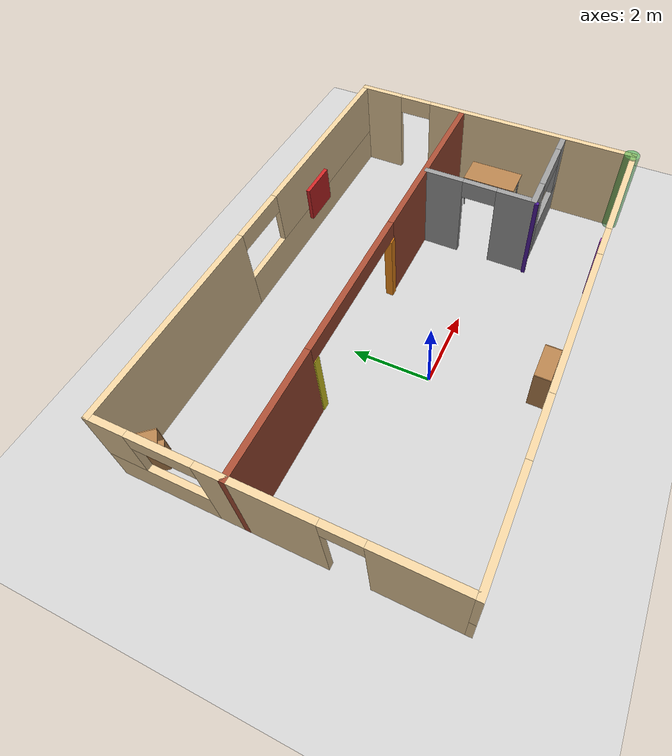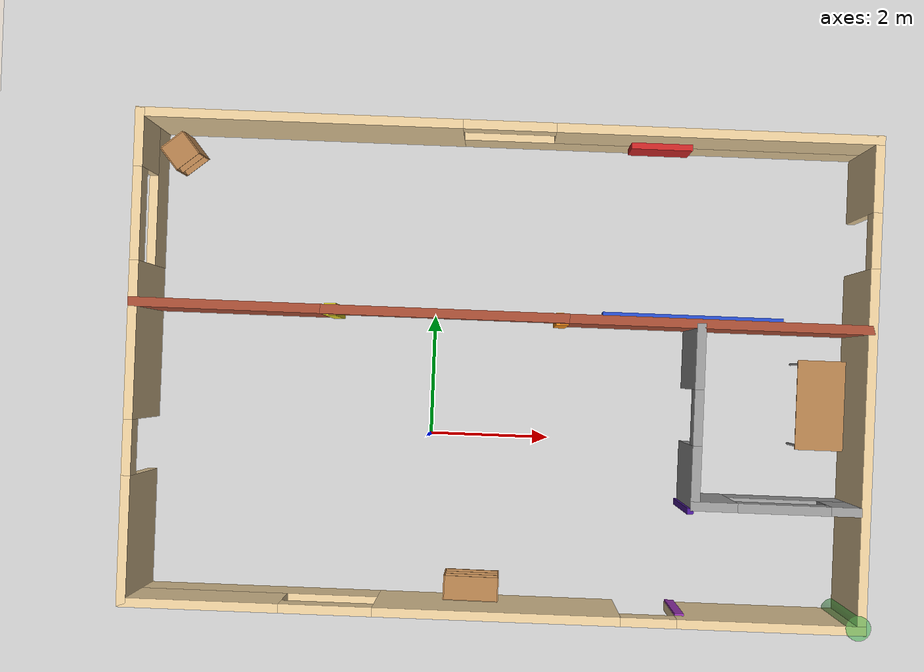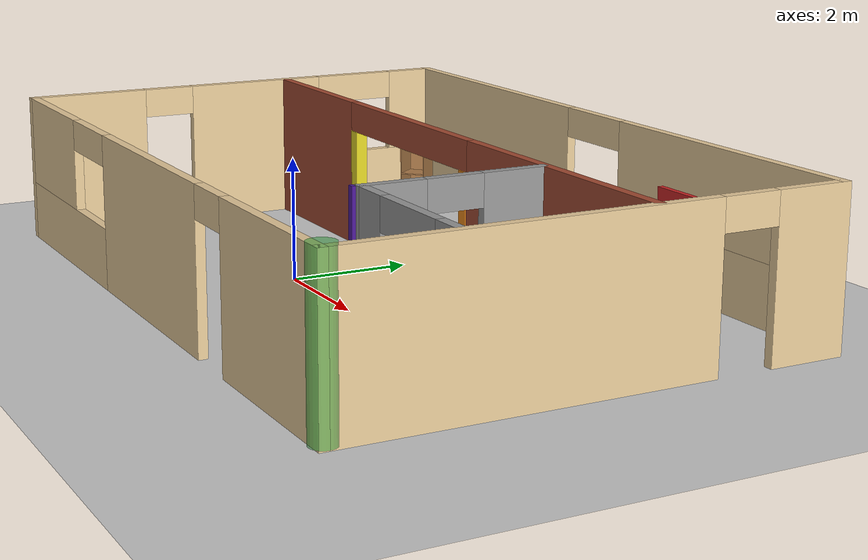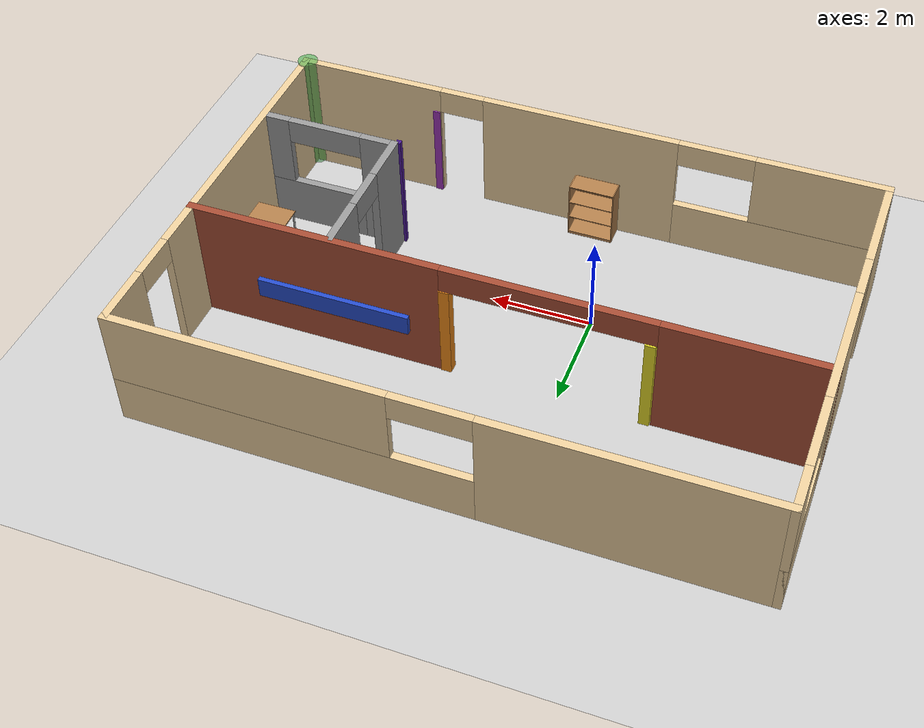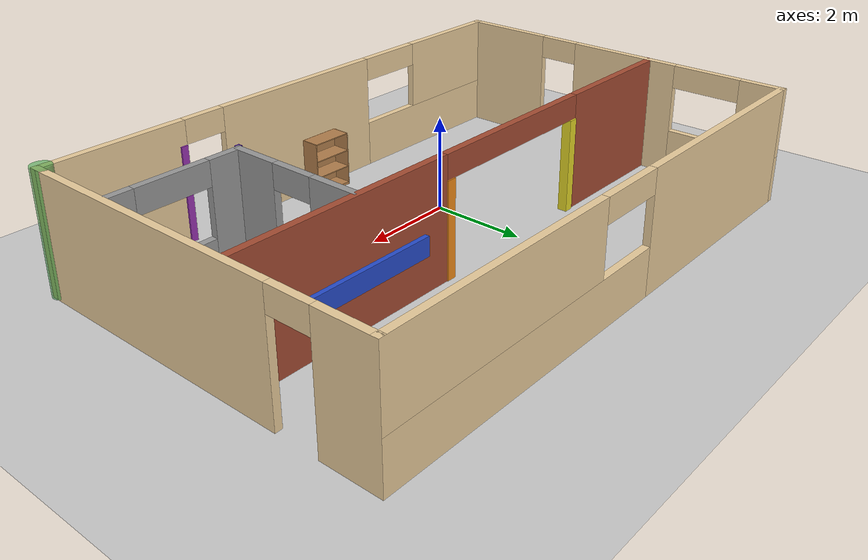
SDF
<sdf version="1.6">
 <world name="default">
  <plugin name="welcome" filename="libmy_script.so"/>
  <light name="sun" type="directional">
   <pose>0 0 10 0 -0 0</pose>
   <diffuse>0.8 0.8 0.8 1</diffuse>
   <specular>0.2 0.2 0.2 1</specular>
   <attenuation>
    <range>1000</range>
    <constant>0.9</constant>
    <linear>0.01</linear>
    <quadratic>0.001</quadratic>
   </attenuation>
   <direction>-0.5 0.1 -0.9</direction>
   <spot><inner_angle>0</inner_angle><outer_angle>0</outer_angle><falloff>0</falloff></spot>
  </light>
  <model name="ground_plane">
   <static>1</static>
   <link name="link">
    <collision name="collision">
     <geometry><plane><normal>0 0 1</normal><size>100 100</size></plane></geometry>
     <surface>
      <contact><collide_bitmask>65535</collide_bitmask></contact>
      <friction><ode><mu>100</mu><mu2>50</mu2></ode></friction>
     </surface>
    </collision>
    <visual name="visual">
     <cast_shadows>0</cast_shadows>
     <geometry><plane><normal>0 0 1</normal><size>100 100</size></plane></geometry>
     <material>
      <script><uri>file://media/materials/scripts/gazebo.material</uri><name>Gazebo/Grey</name></script>
     </material>
    </visual>
   </link>
  </model>
  <gravity>0 0 -9.8</gravity>
  <magnetic_field>6e-06 2.3e-05 -4.2e-05</magnetic_field>
  <atmosphere type="adiabatic"/>
  <physics name="default_physics" default="0" type="ode">
   <max_step_size>0.001</max_step_size>
   <real_time_factor>1</real_time_factor>
   <real_time_update_rate>1000</real_time_update_rate>
  </physics>
  <scene><ambient>0.4 0.4 0.4 1</ambient><background>0.7 0.7 0.7 1</background><shadows>1</shadows></scene>
  <spherical_coordinates>
   <surface_model>EARTH_WGS84</surface_model>
   <latitude_deg>0</latitude_deg>
   <longitude_deg>0</longitude_deg>
   <elevation>0</elevation>
   <heading_deg>0</heading_deg>
  </spherical_coordinates>
  <model name="myBuilding">
   <pose>1.15408 1.10009 0 0 -0 0</pose>
   <link name="Wall_10">
    <pose>4.4883 -2.03352 0 0 -0 0</pose>
    <visual name="Wall_10_Visual_0">
     <pose>-0.995451 0 1.25 0 -0 0</pose>
     <geometry><box><size>0.759098 0.15 2.5</size></box></geometry>
     <material>
      <script><uri>file://media/materials/scripts/gazebo.material</uri><name>Gazebo/Grey</name></script>
      <ambient>1 1 1 1</ambient>
     </material>
     <meta><layer>0</layer></meta>
    </visual>
    <collision name="Wall_10_Collision_0">
     <geometry><box><size>0.759098 0.15 2.5</size></box></geometry>
     <pose>-0.995451 0 1.25 0 -0 0</pose>
    </collision>
    <visual name="Wall_10_Visual_1">
     <pose>0.379549 0 0.5 0 -0 0</pose>
     <geometry><box><size>1.9909 0.15 1</size></box></geometry>
     <material>
      <script><uri>file://media/materials/scripts/gazebo.material</uri><name>Gazebo/Grey</name></script>
      <ambient>1 1 1 1</ambient>
     </material>
     <meta><layer>0</layer></meta>
    </visual>
    <collision name="Wall_10_Collision_1">
     <geometry><box><size>1.9909 0.15 1</size></box></geometry>
     <pose>0.379549 0 0.5 0 -0 0</pose>
    </collision>
    <visual name="Wall_10_Visual_2">
     <pose>1.12955 0 1.75 0 -0 0</pose>
     <geometry><box><size>0.490902 0.15 1.5</size></box></geometry>
     <material>
      <script><uri>file://media/materials/scripts/gazebo.material</uri><name>Gazebo/Grey</name></script>
      <ambient>1 1 1 1</ambient>
     </material>
     <meta><layer>0</layer></meta>
    </visual>
    <collision name="Wall_10_Collision_2">
     <geometry><box><size>0.490902 0.15 1.5</size></box></geometry>
     <pose>1.12955 0 1.75 0 -0 0</pose>
    </collision>
    <visual name="Wall_10_Visual_3">
     <pose>0.134098 0 2.25 0 -0 0</pose>
     <geometry><box><size>1.5 0.15 0.5</size></box></geometry>
     <material>
      <script><uri>file://media/materials/scripts/gazebo.material</uri><name>Gazebo/Grey</name></script>
      <ambient>1 1 1 1</ambient>
     </material>
     <meta><layer>0</layer></meta>
    </visual>
    <collision name="Wall_10_Collision_3">
     <geometry><box><size>1.5 0.15 0.5</size></box></geometry>
     <pose>0.134098 0 2.25 0 -0 0</pose>
    </collision>
   </link>
   <link name="Wall_2">
    <pose>0.000155 3.925 0 0 -0 0</pose>
    <visual name="Wall_2_Visual_0">
     <pose>-3.37694 0 1.25 0 -0 0</pose>
     <geometry><box><size>5.24613 0.15 2.5</size></box></geometry>
     <material>
      <script><uri>file://media/materials/scripts/gazebo.material</uri><name>Gazebo/Grey</name></script>
      <ambient>0.921569 0.807843 0.615686 1</ambient>
     </material>
     <meta><layer>0</layer></meta>
    </visual>
    <collision name="Wall_2_Collision_0">
     <geometry><box><size>5.24613 0.15 2.5</size></box></geometry>
     <pose>-3.37694 0 1.25 0 -0 0</pose>
    </collision>
    <visual name="Wall_2_Visual_1">
     <pose>2.62306 0 0.5 0 -0 0</pose>
     <geometry><box><size>6.75387 0.15 1</size></box></geometry>
     <material>
      <script><uri>file://media/materials/scripts/gazebo.material</uri><name>Gazebo/Grey</name></script>
      <ambient>0.921569 0.807843 0.615686 1</ambient>
     </material>
     <meta><layer>0</layer></meta>
    </visual>
    <collision name="Wall_2_Collision_1">
     <geometry><box><size>6.75387 0.15 1</size></box></geometry>
     <pose>2.62306 0 0.5 0 -0 0</pose>
    </collision>
    <visual name="Wall_2_Visual_2">
     <pose>3.37306 0 1.75 0 -0 0</pose>
     <geometry><box><size>5.25387 0.15 1.5</size></box></geometry>
     <material>
      <script><uri>file://media/materials/scripts/gazebo.material</uri><name>Gazebo/Grey</name></script>
      <ambient>0.921569 0.807843 0.615686 1</ambient>
     </material>
     <meta><layer>0</layer></meta>
    </visual>
    <collision name="Wall_2_Collision_2">
     <geometry><box><size>5.25387 0.15 1.5</size></box></geometry>
     <pose>3.37306 0 1.75 0 -0 0</pose>
    </collision>
    <visual name="Wall_2_Visual_3">
     <pose>-0.003875 0 2.25 0 -0 0</pose>
     <geometry><box><size>1.5 0.15 0.5</size></box></geometry>
     <material>
      <script><uri>file://media/materials/scripts/gazebo.material</uri><name>Gazebo/Grey</name></script>
      <ambient>0.921569 0.807843 0.615686 1</ambient>
     </material>
     <meta><layer>0</layer></meta>
    </visual>
    <collision name="Wall_2_Collision_3">
     <geometry><box><size>1.5 0.15 0.5</size></box></geometry>
     <pose>-0.003875 0 2.25 0 -0 0</pose>
    </collision>
   </link>
   <link name="Wall_3">
    <pose>5.92516 0 0 0 0 -1.5708</pose>
    <visual name="Wall_3_Visual_0">
     <pose>-3.38498 0 1.25 0 -0 0</pose>
     <geometry><box><size>1.23003 0.15 2.5</size></box></geometry>
     <material>
      <script><uri>file://media/materials/scripts/gazebo.material</uri><name>Gazebo/Grey</name></script>
      <ambient>0.921569 0.807843 0.615686 1</ambient>
     </material>
     <meta><layer>0</layer></meta>
    </visual>
    <collision name="Wall_3_Collision_0">
     <geometry><box><size>1.23003 0.15 2.5</size></box></geometry>
     <pose>-3.38498 0 1.25 0 -0 0</pose>
    </collision>
    <visual name="Wall_3_Visual_1">
     <pose>1.06502 0 1.25 0 -0 0</pose>
     <geometry><box><size>5.86997 0.15 2.5</size></box></geometry>
     <material>
      <script><uri>file://media/materials/scripts/gazebo.material</uri><name>Gazebo/Grey</name></script>
      <ambient>0.921569 0.807843 0.615686 1</ambient>
     </material>
     <meta><layer>0</layer></meta>
    </visual>
    <collision name="Wall_3_Collision_1">
     <geometry><box><size>5.86997 0.15 2.5</size></box></geometry>
     <pose>1.06502 0 1.25 0 -0 0</pose>
    </collision>
    <visual name="Wall_3_Visual_2">
     <pose>-2.31997 0 2.25 0 -0 0</pose>
     <geometry><box><size>0.9 0.15 0.5</size></box></geometry>
     <material>
      <script><uri>file://media/materials/scripts/gazebo.material</uri><name>Gazebo/Grey</name></script>
      <ambient>0.921569 0.807843 0.615686 1</ambient>
     </material>
     <meta><layer>0</layer></meta>
    </visual>
    <collision name="Wall_3_Collision_2">
     <geometry><box><size>0.9 0.15 0.5</size></box></geometry>
     <pose>-2.31997 0 2.25 0 -0 0</pose>
    </collision>
   </link>
   <link name="Wall_4">
    <pose>0.000155 -3.925 0 0 -0 3.14159</pose>
    <visual name="Wall_4_Visual_0">
     <pose>-4.48368 0 1.25 0 -0 0</pose>
     <geometry><box><size>3.03264 0.15 2.5</size></box></geometry>
     <material>
      <script><uri>file://media/materials/scripts/gazebo.material</uri><name>Gazebo/Grey</name></script>
      <ambient>0.921569 0.807843 0.615686 1</ambient>
     </material>
     <meta><layer>0</layer></meta>
    </visual>
    <collision name="Wall_4_Collision_0">
     <geometry><box><size>3.03264 0.15 2.5</size></box></geometry>
     <pose>-4.48368 0 1.25 0 -0 0</pose>
    </collision>
    <visual name="Wall_4_Visual_1">
     <pose>-0.076733 0 1.25 0 -0 0</pose>
     <geometry><box><size>3.98126 0.15 2.5</size></box></geometry>
     <material>
      <script><uri>file://media/materials/scripts/gazebo.material</uri><name>Gazebo/Grey</name></script>
      <ambient>0.921569 0.807843 0.615686 1</ambient>
     </material>
     <meta><layer>0</layer></meta>
    </visual>
    <collision name="Wall_4_Collision_1">
     <geometry><box><size>3.98126 0.15 2.5</size></box></geometry>
     <pose>-0.076733 0 1.25 0 -0 0</pose>
    </collision>
    <visual name="Wall_4_Visual_2">
     <pose>3.95695 0 0.5 0 -0 0</pose>
     <geometry><box><size>4.0861 0.15 1</size></box></geometry>
     <material>
      <script><uri>file://media/materials/scripts/gazebo.material</uri><name>Gazebo/Grey</name></script>
      <ambient>0.921569 0.807843 0.615686 1</ambient>
     </material>
     <meta><layer>0</layer></meta>
    </visual>
    <collision name="Wall_4_Collision_2">
     <geometry><box><size>4.0861 0.15 1</size></box></geometry>
     <pose>3.95695 0 0.5 0 -0 0</pose>
    </collision>
    <visual name="Wall_4_Visual_3">
     <pose>4.70695 0 1.75 0 -0 0</pose>
     <geometry><box><size>2.5861 0.15 1.5</size></box></geometry>
     <material>
      <script><uri>file://media/materials/scripts/gazebo.material</uri><name>Gazebo/Grey</name></script>
      <ambient>0.921569 0.807843 0.615686 1</ambient>
     </material>
     <meta><layer>0</layer></meta>
    </visual>
    <collision name="Wall_4_Collision_3">
     <geometry><box><size>2.5861 0.15 1.5</size></box></geometry>
     <pose>4.70695 0 1.75 0 -0 0</pose>
    </collision>
    <visual name="Wall_4_Visual_4">
     <pose>-2.51736 0 2.25 0 -0 0</pose>
     <geometry><box><size>0.9 0.15 0.5</size></box></geometry>
     <material>
      <script><uri>file://media/materials/scripts/gazebo.material</uri><name>Gazebo/Grey</name></script>
      <ambient>0.921569 0.807843 0.615686 1</ambient>
     </material>
     <meta><layer>0</layer></meta>
    </visual>
    <collision name="Wall_4_Collision_4">
     <geometry><box><size>0.9 0.15 0.5</size></box></geometry>
     <pose>-2.51736 0 2.25 0 -0 0</pose>
    </collision>
    <visual name="Wall_4_Visual_5">
     <pose>2.6639 0 2.25 0 -0 0</pose>
     <geometry><box><size>1.5 0.15 0.5</size></box></geometry>
     <material>
      <script><uri>file://media/materials/scripts/gazebo.material</uri><name>Gazebo/Grey</name></script>
      <ambient>0.921569 0.807843 0.615686 1</ambient>
     </material>
     <meta><layer>0</layer></meta>
    </visual>
    <collision name="Wall_4_Collision_5">
     <geometry><box><size>1.5 0.15 0.5</size></box></geometry>
     <pose>2.6639 0 2.25 0 -0 0</pose>
    </collision>
   </link>
   <link name="Wall_5">
    <pose>-5.92485 0 0 0 -0 1.5708</pose>
    <visual name="Wall_5_Visual_0">
     <pose>-2.95016 0 1.25 0 -0 0</pose>
     <geometry><box><size>2.09968 0.15 2.5</size></box></geometry>
     <material>
      <script><uri>file://media/materials/scripts/gazebo.material</uri><name>Gazebo/Grey</name></script>
      <ambient>0.921569 0.807843 0.615686 1</ambient>
     </material>
     <meta><layer>0</layer></meta>
    </visual>
    <collision name="Wall_5_Collision_0">
     <geometry><box><size>2.09968 0.15 2.5</size></box></geometry>
     <pose>-2.95016 0 1.25 0 -0 0</pose>
    </collision>
    <visual name="Wall_5_Visual_1">
     <pose>0.273258 0 1.25 0 -0 0</pose>
     <geometry><box><size>2.54716 0.15 2.5</size></box></geometry>
     <material>
      <script><uri>file://media/materials/scripts/gazebo.material</uri><name>Gazebo/Grey</name></script>
      <ambient>0.921569 0.807843 0.615686 1</ambient>
     </material>
     <meta><layer>0</layer></meta>
    </visual>
    <collision name="Wall_5_Collision_1">
     <geometry><box><size>2.54716 0.15 2.5</size></box></geometry>
     <pose>0.273258 0 1.25 0 -0 0</pose>
    </collision>
    <visual name="Wall_5_Visual_2">
     <pose>2.77342 0 0.5 0 -0 0</pose>
     <geometry><box><size>2.45316 0.15 1</size></box></geometry>
     <material>
      <script><uri>file://media/materials/scripts/gazebo.material</uri><name>Gazebo/Grey</name></script>
      <ambient>0.921569 0.807843 0.615686 1</ambient>
     </material>
     <meta><layer>0</layer></meta>
    </visual>
    <collision name="Wall_5_Collision_2">
     <geometry><box><size>2.45316 0.15 1</size></box></geometry>
     <pose>2.77342 0 0.5 0 -0 0</pose>
    </collision>
    <visual name="Wall_5_Visual_3">
     <pose>3.52342 0 1.75 0 -0 0</pose>
     <geometry><box><size>0.953163 0.15 1.5</size></box></geometry>
     <material>
      <script><uri>file://media/materials/scripts/gazebo.material</uri><name>Gazebo/Grey</name></script>
      <ambient>0.921569 0.807843 0.615686 1</ambient>
     </material>
     <meta><layer>0</layer></meta>
    </visual>
    <collision name="Wall_5_Collision_3">
     <geometry><box><size>0.953163 0.15 1.5</size></box></geometry>
     <pose>3.52342 0 1.75 0 -0 0</pose>
    </collision>
    <visual name="Wall_5_Visual_4">
     <pose>-1.45032 0 2.25 0 -0 0</pose>
     <geometry><box><size>0.9 0.15 0.5</size></box></geometry>
     <material>
      <script><uri>file://media/materials/scripts/gazebo.material</uri><name>Gazebo/Grey</name></script>
      <ambient>0.921569 0.807843 0.615686 1</ambient>
     </material>
     <meta><layer>0</layer></meta>
    </visual>
    <collision name="Wall_5_Collision_4">
     <geometry><box><size>0.9 0.15 0.5</size></box></geometry>
     <pose>-1.45032 0 2.25 0 -0 0</pose>
    </collision>
    <visual name="Wall_5_Visual_5">
     <pose>2.29684 0 2.25 0 -0 0</pose>
     <geometry><box><size>1.5 0.15 0.5</size></box></geometry>
     <material>
      <script><uri>file://media/materials/scripts/gazebo.material</uri><name>Gazebo/Grey</name></script>
      <ambient>0.921569 0.807843 0.615686 1</ambient>
     </material>
     <meta><layer>0</layer></meta>
    </visual>
    <collision name="Wall_5_Collision_5">
     <geometry><box><size>1.5 0.15 0.5</size></box></geometry>
     <pose>2.29684 0 2.25 0 -0 0</pose>
    </collision>
   </link>
   <link name="Wall_7">
    <pose>-0.000156 0.88587 0 0 -0 0</pose>
    <visual name="Wall_7_Visual_0">
     <pose>-4.46439 0 1.25 0 -0 0</pose>
     <geometry><box><size>3.07121 0.15 2.5</size></box></geometry>
     <material>
      <script><uri>file://media/materials/scripts/gazebo.material</uri><name>Gazebo/Bricks</name></script>
      <ambient>1 1 1 1</ambient>
     </material>
     <meta><layer>0</layer></meta>
    </visual>
    <collision name="Wall_7_Collision_0">
     <geometry><box><size>3.07121 0.15 2.5</size></box></geometry>
     <pose>-4.46439 0 1.25 0 -0 0</pose>
    </collision>
    <visual name="Wall_7_Visual_1">
     <pose>3.53561 0 1.25 0 -0 0</pose>
     <geometry><box><size>4.92879 0.15 2.5</size></box></geometry>
     <material>
      <script><uri>file://media/materials/scripts/gazebo.material</uri><name>Gazebo/Bricks</name></script>
      <ambient>1 1 1 1</ambient>
     </material>
     <meta><layer>0</layer></meta>
    </visual>
    <collision name="Wall_7_Collision_1">
     <geometry><box><size>4.92879 0.15 2.5</size></box></geometry>
     <pose>3.53561 0 1.25 0 -0 0</pose>
    </collision>
    <visual name="Wall_7_Visual_2">
     <pose>-0.928789 0 2.25 0 -0 0</pose>
     <geometry><box><size>4 0.15 0.5</size></box></geometry>
     <material>
      <script><uri>file://media/materials/scripts/gazebo.material</uri><name>Gazebo/Bricks</name></script>
      <ambient>1 1 1 1</ambient>
     </material>
     <meta><layer>0</layer></meta>
    </visual>
    <collision name="Wall_7_Collision_2">
     <geometry><box><size>4 0.15 0.5</size></box></geometry>
     <pose>-0.928789 0 2.25 0 -0 0</pose>
    </collision>
   </link>
   <link name="Wall_9">
    <pose>3.1883 -0.608521 0 0 0 -1.5708</pose>
    <visual name="Wall_9_Visual_0">
     <pose>-0.970451 0 1.25 0 -0 0</pose>
     <geometry><box><size>1.0591 0.15 2.5</size></box></geometry>
     <material>
      <script><uri>file://media/materials/scripts/gazebo.material</uri><name>Gazebo/Grey</name></script>
      <ambient>1 1 1 1</ambient>
     </material>
     <meta><layer>0</layer></meta>
    </visual>
    <collision name="Wall_9_Collision_0">
     <geometry><box><size>1.0591 0.15 2.5</size></box></geometry>
     <pose>-0.970451 0 1.25 0 -0 0</pose>
    </collision>
    <visual name="Wall_9_Visual_1">
     <pose>0.979549 0 1.25 0 -0 0</pose>
     <geometry><box><size>1.0409 0.15 2.5</size></box></geometry>
     <material>
      <script><uri>file://media/materials/scripts/gazebo.material</uri><name>Gazebo/Grey</name></script>
      <ambient>1 1 1 1</ambient>
     </material>
     <meta><layer>0</layer></meta>
    </visual>
    <collision name="Wall_9_Collision_1">
     <geometry><box><size>1.0409 0.15 2.5</size></box></geometry>
     <pose>0.979549 0 1.25 0 -0 0</pose>
    </collision>
    <visual name="Wall_9_Visual_2">
     <pose>0.009098 0 2.25 0 -0 0</pose>
     <geometry><box><size>0.9 0.15 0.5</size></box></geometry>
     <material>
      <script><uri>file://media/materials/scripts/gazebo.material</uri><name>Gazebo/Grey</name></script>
      <ambient>1 1 1 1</ambient>
     </material>
     <meta><layer>0</layer></meta>
    </visual>
    <collision name="Wall_9_Collision_2">
     <geometry><box><size>0.9 0.15 0.5</size></box></geometry>
     <pose>0.009098 0 2.25 0 -0 0</pose>
    </collision>
   </link>
   <static>1</static>
  </model>
  <model name="table">
   <static>1</static>
   <link name="link">
    <collision name="surface">
     <pose>0 0 1 0 -0 0</pose>
     <geometry><box><size>1.5 0.8 0.03</size></box></geometry>
     <surface><friction><ode><mu>0.6</mu><mu2>0.6</mu2></ode></friction></surface>
    </collision>
    <visual name="visual1">
     <pose>0 0 1 0 -0 0</pose>
     <geometry><box><size>1.5 0.8 0.03</size></box></geometry>
     <material>
      <script><uri>file://media/materials/scripts/gazebo.material</uri><name>Gazebo/WoodPallet</name></script>
     </material>
    </visual>
    <collision name="front_left_leg">
     <pose>0.68 0.38 0.5 0 -0 0</pose>
     <geometry><cylinder><radius>0.02</radius><length>1</length></cylinder></geometry>
    </collision>
    <visual name="front_left_leg">
     <pose>0.68 0.38 0.5 0 -0 0</pose>
     <geometry><cylinder><radius>0.02</radius><length>1</length></cylinder></geometry>
     <material>
      <script><uri>file://media/materials/scripts/gazebo.material</uri><name>Gazebo/Grey</name></script>
     </material>
    </visual>
    <collision name="front_right_leg">
     <pose>0.68 -0.38 0.5 0 -0 0</pose>
     <geometry><cylinder><radius>0.02</radius><length>1</length></cylinder></geometry>
    </collision>
    <visual name="front_right_leg">
     <pose>0.68 -0.38 0.5 0 -0 0</pose>
     <geometry><cylinder><radius>0.02</radius><length>1</length></cylinder></geometry>
     <material>
      <script><uri>file://media/materials/scripts/gazebo.material</uri><name>Gazebo/Grey</name></script>
     </material>
    </visual>
    <collision name="back_right_leg">
     <pose>-0.68 -0.38 0.5 0 -0 0</pose>
     <geometry><cylinder><radius>0.02</radius><length>1</length></cylinder></geometry>
    </collision>
    <visual name="back_right_leg">
     <pose>-0.68 -0.38 0.5 0 -0 0</pose>
     <geometry><cylinder><radius>0.02</radius><length>1</length></cylinder></geometry>
     <material>
      <script><uri>file://media/materials/scripts/gazebo.material</uri><name>Gazebo/Grey</name></script>
     </material>
    </visual>
    <collision name="back_left_leg">
     <pose>-0.68 0.38 0.5 0 -0 0</pose>
     <geometry><cylinder><radius>0.02</radius><length>1</length></cylinder></geometry>
    </collision>
    <visual name="back_left_leg">
     <pose>-0.68 0.38 0.5 0 -0 0</pose>
     <geometry><cylinder><radius>0.02</radius><length>1</length></cylinder></geometry>
     <material>
      <script><uri>file://media/materials/scripts/gazebo.material</uri><name>Gazebo/Grey</name></script>
     </material>
    </visual>
   </link>
   <pose>6.5188 0.736819 0 0 0 -1.5707</pose>
  </model>
  <model name="cabinet">
   <static>1</static>
   <link name="cabinet_bottom_plate">
    <inertial>
     <pose>0 0 -1 0 -0 0</pose>
     <inertia><ixx>2.05</ixx><ixy>0</ixy><ixz>0</ixz><iyy>2.05</iyy><iyz>0</iyz><izz>2.05</izz></inertia>
     <mass>25</mass>
    </inertial>
    <collision name="cabinet_bottom_plate_geom">
     <pose>0 0 0.01 0 -0 0</pose>
     <geometry><box><size>0.45 0.45 0.02</size></box></geometry>
    </collision>
    <visual name="cabinet_bottom_plate_geom_visual">
     <pose>0 0 0.01 0 -0 0</pose>
     <geometry><box><size>0.45 0.45 0.02</size></box></geometry>
     <material>
      <script><uri>file://media/materials/scripts/gazebo.material</uri><name>Gazebo/Wood</name></script>
     </material>
    </visual>
    <collision name="cabinet_bottom_plate_geom_cabinet_back_plate">
     <pose>0.235 0 0.51 0 -0 0</pose>
     <geometry><box><size>0.02 0.45 1.02</size></box></geometry>
    </collision>
    <visual name="cabinet_bottom_plate_geom_cabinet_back_plate_visual">
     <pose>0.235 0 0.51 0 -0 0</pose>
     <geometry><box><size>0.02 0.45 1.02</size></box></geometry>
     <material>
      <script><uri>file://media/materials/scripts/gazebo.material</uri><name>Gazebo/Wood</name></script>
     </material>
    </visual>
    <collision name="cabinet_bottom_plate_geom_cabinet_left_plate">
     <pose>0 0.235 0.51 0 -0 0</pose>
     <geometry><box><size>0.45 0.02 1.02</size></box></geometry>
    </collision>
    <visual name="cabinet_bottom_plate_geom_cabinet_left_plate_visual">
     <pose>0 0.235 0.51 0 -0 0</pose>
     <geometry><box><size>0.45 0.02 1.02</size></box></geometry>
     <material>
      <script><uri>file://media/materials/scripts/gazebo.material</uri><name>Gazebo/Wood</name></script>
     </material>
    </visual>
    <collision name="cabinet_bottom_plate_geom_cabinet_middle_plate">
     <pose>0 0 0.51 0 -0 0</pose>
     <geometry><box><size>0.45 0.45 0.02</size></box></geometry>
    </collision>
    <visual name="cabinet_bottom_plate_geom_cabinet_middle_plate_visual">
     <pose>0 0 0.51 0 -0 0</pose>
     <geometry><box><size>0.45 0.45 0.02</size></box></geometry>
     <material>
      <script><uri>file://media/materials/scripts/gazebo.material</uri><name>Gazebo/Wood</name></script>
     </material>
    </visual>
    <collision name="cabinet_bottom_plate_geom_cabinet_right_plate">
     <pose>0 -0.235 0.51 0 -0 0</pose>
     <geometry><box><size>0.45 0.02 1.02</size></box></geometry>
    </collision>
    <visual name="cabinet_bottom_plate_geom_cabinet_right_plate_visual">
     <pose>0 -0.235 0.51 0 -0 0</pose>
     <geometry><box><size>0.45 0.02 1.02</size></box></geometry>
     <material>
      <script><uri>file://media/materials/scripts/gazebo.material</uri><name>Gazebo/Wood</name></script>
     </material>
    </visual>
    <collision name="cabinet_bottom_plate_geom_cabinet_top_plate">
     <pose>0 0 1.01 0 -0 0</pose>
     <geometry><box><size>0.45 0.45 0.02</size></box></geometry>
    </collision>
    <visual name="cabinet_bottom_plate_geom_cabinet_top_plate_visual">
     <pose>0 0 1.01 0 -0 0</pose>
     <geometry><box><size>0.45 0.45 0.02</size></box></geometry>
     <material>
      <script><uri>file://media/materials/scripts/gazebo.material</uri><name>Gazebo/Wood</name></script>
     </material>
    </visual>
   </link>
   <pose>-4.3275 4.57272 0.024284 -0.014259 0.011516 2.25042</pose>
  </model>
  <model name="bookshelf">
   <static>1</static>
   <link name="link">
    <inertial><mass>1</mass></inertial>
    <collision name="back">
     <pose>0 0.005 0.6 0 -0 0</pose>
     <geometry><box><size>0.9 0.01 1.2</size></box></geometry>
    </collision>
    <visual name="visual1">
     <pose>0 0.005 0.6 0 -0 0</pose>
     <geometry><box><size>0.9 0.01 1.2</size></box></geometry>
     <material>
      <script><uri>file://media/materials/scripts/gazebo.material</uri><name>Gazebo/Wood</name></script>
     </material>
    </visual>
    <collision name="left_side">
     <pose>0.45 -0.195 0.6 0 -0 0</pose>
     <geometry><box><size>0.02 0.4 1.2</size></box></geometry>
    </collision>
    <visual name="visual2">
     <pose>0.45 -0.195 0.6 0 -0 0</pose>
     <geometry><box><size>0.02 0.4 1.2</size></box></geometry>
     <material>
      <script><uri>file://media/materials/scripts/gazebo.material</uri><name>Gazebo/Wood</name></script>
     </material>
    </visual>
    <collision name="right_side">
     <pose>-0.45 -0.195 0.6 0 -0 0</pose>
     <geometry><box><size>0.02 0.4 1.2</size></box></geometry>
    </collision>
    <visual name="visual3">
     <pose>-0.45 -0.195 0.6 0 -0 0</pose>
     <geometry><box><size>0.02 0.4 1.2</size></box></geometry>
     <material>
      <script><uri>file://media/materials/scripts/gazebo.material</uri><name>Gazebo/Wood</name></script>
     </material>
    </visual>
    <collision name="bottom">
     <pose>0 -0.195 0.03 0 -0 0</pose>
     <geometry><box><size>0.88 0.4 0.06</size></box></geometry>
    </collision>
    <visual name="visual4">
     <pose>0 -0.195 0.03 0 -0 0</pose>
     <geometry><box><size>0.88 0.4 0.06</size></box></geometry>
     <material>
      <script><uri>file://media/materials/scripts/gazebo.material</uri><name>Gazebo/Wood</name></script>
     </material>
    </visual>
    <collision name="top">
     <pose>0 -0.195 1.19 0 -0 0</pose>
     <geometry><box><size>0.88 0.4 0.02</size></box></geometry>
    </collision>
    <visual name="visual5">
     <pose>0 -0.195 1.19 0 -0 0</pose>
     <geometry><box><size>0.88 0.4 0.02</size></box></geometry>
     <material>
      <script><uri>file://media/materials/scripts/gazebo.material</uri><name>Gazebo/Wood</name></script>
     </material>
    </visual>
    <collision name="low_shelf">
     <pose>0 -0.195 0.43 0 -0 0</pose>
     <geometry><box><size>0.88 0.4 0.02</size></box></geometry>
    </collision>
    <visual name="visual6">
     <pose>0 -0.195 0.43 0 -0 0</pose>
     <geometry><box><size>0.88 0.4 0.02</size></box></geometry>
     <material>
      <script><uri>file://media/materials/scripts/gazebo.material</uri><name>Gazebo/Wood</name></script>
     </material>
    </visual>
    <collision name="high_shelf">
     <pose>0 -0.195 0.8 0 -0 0</pose>
     <geometry><box><size>0.88 0.4 0.02</size></box></geometry>
    </collision>
    <visual name="visual7">
     <pose>0 -0.195 0.8 0 -0 0</pose>
     <geometry><box><size>0.88 0.4 0.02</size></box></geometry>
     <material>
      <script><uri>file://media/materials/scripts/gazebo.material</uri><name>Gazebo/Wood</name></script>
     </material>
    </visual>
   </link>
   <pose>0.795111 -2.72582 0 0 -0 3.13511</pose>
  </model>
  <model name="unit_box">
   <static>1</static>
   <pose>2.12831 1.98392 1.00451 0 -0 0</pose>
   <link name="link">
    <inertial>
     <mass>0.1</mass>
     <inertia>
      <ixx>0.166667</ixx>
      <ixy>0</ixy>
      <ixz>0</ixz>
      <iyy>0.166667</iyy>
      <iyz>0</iyz>
      <izz>0.166667</izz>
     </inertia>
    </inertial>
    <collision name="collision"><geometry><box><size>0.18 0.18 1.9</size></box></geometry></collision>
    <visual name="visual">
     <geometry><box><size>0.2 0.2 2</size></box></geometry>
     <material>
      <script><name>Gazebo/Orange</name><uri>file://media/materials/scripts/gazebo.material</uri></script>
     </material>
    </visual>
   </link>
  </model>
  <model name="unit_box_clone">
   <static>1</static>
   <pose>-1.65841 1.99868 1.00451 0 -0 0</pose>
   <link name="link">
    <inertial>
     <mass>0.1</mass>
     <inertia>
      <ixx>0.166667</ixx>
      <ixy>0</ixy>
      <ixz>0</ixz>
      <iyy>0.166667</iyy>
      <iyz>0</iyz>
      <izz>0.166667</izz>
     </inertia>
    </inertial>
    <collision name="collision"><geometry><box><size>0.18 0.18 1.9</size></box></geometry></collision>
    <visual name="visual">
     <geometry><box><size>0.2 0.2 2</size></box></geometry>
     <material>
      <script><name>Gazebo/Yellow</name><uri>file://media/materials/scripts/gazebo.material</uri></script>
     </material>
    </visual>
   </link>
  </model>
  <model name="unit_cylinder">
   <static>1</static>
   <pose>7.02082 -2.77873 1.2885 3e-06 -4e-06 0</pose>
   <link name="link">
    <inertial>
     <mass>1</mass>
     <inertia><ixx>0.145833</ixx><ixy>0</ixy><ixz>0</ixz><iyy>0.145833</iyy><iyz>0</iyz><izz>0.125</izz></inertia>
    </inertial>
    <collision name="collision">
     <geometry><cylinder><radius>0.19</radius><length>2.5</length></cylinder></geometry>
    </collision>
    <visual name="visual">
     <geometry><cylinder><radius>0.2</radius><length>2.5</length></cylinder></geometry>
     <material>
      <script>
       <name>Gazebo/GreenTransparentOverlay</name>
       <uri>file://media/materials/scripts/gazebo.material</uri>
      </script>
     </material>
    </visual>
   </link>
  </model>
  <model name="square">
   <static>1</static>
   <link name="link">
    <inertial>
     <mass>1</mass>
     <inertia>
      <ixx>0.166667</ixx>
      <ixy>0</ixy>
      <ixz>0</ixz>
      <iyy>0.166667</iyy>
      <iyz>0</iyz>
      <izz>0.166667</izz>
     </inertia>
    </inertial>
    <visual name="visual">
     <geometry><box><size>1 0.1 1</size></box></geometry>
     <material>
      <script><name>Gazebo/Red</name><uri>file://media/materials/scripts/gazebo.material</uri></script>
      <shader type="pixel"><normal_map>__default__</normal_map></shader>
      <ambient>0.3 0.3 0.3 1</ambient>
      <diffuse>0.7 0.7 0.7 1</diffuse>
      <specular>0.01 0.01 0.01 1</specular>
      <emissive>0 0 0 1</emissive>
     </material>
    </visual>
    <collision name="collision">
     <geometry><box><size>1 0.1 1</size></box></geometry>
     <surface>
      <friction>
       <ode><mu>1</mu><mu2>1</mu2><fdir1>0 0 0</fdir1><slip1>0</slip1><slip2>0</slip2></ode>
       <torsional>
        <coefficient>1</coefficient>
        <patch_radius>0</patch_radius>
        <surface_radius>0</surface_radius>
        <use_patch_radius>1</use_patch_radius>
        <ode><slip>0</slip></ode>
       </torsional>
      </friction>
      <bounce><restitution_coefficient>0</restitution_coefficient><threshold>1e+06</threshold></bounce>
      <contact>
       <collide_without_contact>0</collide_without_contact>
       <collide_without_contact_bitmask>1</collide_without_contact_bitmask>
       <collide_bitmask>1</collide_bitmask>
       <ode>
        <soft_cfm>0</soft_cfm>
        <soft_erp>0.2</soft_erp>
        <kp>1e+13</kp>
        <kd>1</kd>
        <max_vel>0.01</max_vel>
        <min_depth>0</min_depth>
       </ode>
       <bullet>
        <split_impulse>1</split_impulse>
        <split_impulse_penetration_threshold>-0.01</split_impulse_penetration_threshold>
        <soft_cfm>0</soft_cfm>
        <soft_erp>0.2</soft_erp>
        <kp>1e+13</kp>
        <kd>1</kd>
       </bullet>
      </contact>
     </surface>
    </collision>
   </link>
   <static>0</static>
   <pose>3.65761 4.88376 1.17439 -1e-05 0 0</pose>
  </model>
  <model name="square_blue">
   <static>1</static>
   <pose>4.32142 2.10874 0.993639 0 -0 0</pose>
   <link name="link">
    <inertial>
     <mass>1</mass>
     <inertia>
      <ixx>0.166667</ixx>
      <ixy>0</ixy>
      <ixz>0</ixz>
      <iyy>0.166667</iyy>
      <iyz>0</iyz>
      <izz>0.166667</izz>
     </inertia>
    </inertial>
    <collision name="collision"><geometry><box><size>3 0.1 0.4</size></box></geometry></collision>
    <visual name="visual">
     <geometry><box><size>3 0.1 0.4</size></box></geometry>
     <material>
      <script><name>Gazebo/Blue</name><uri>file://media/materials/scripts/gazebo.material</uri></script>
     </material>
    </visual>
   </link>
  </model>
  <model name="corner">
   <static>1</static>
   <pose>4.27016 -1.01809 1.24032 0 -0 0</pose>
   <link name="link">
    <inertial>
     <mass>1</mass>
     <inertia>
      <ixx>0.166667</ixx>
      <ixy>0</ixy>
      <ixz>0</ixz>
      <iyy>0.166667</iyy>
      <iyz>0</iyz>
      <izz>0.166667</izz>
     </inertia>
    </inertial>
    <collision name="collision"><geometry><box><size>0.1 0.1 2.5</size></box></geometry></collision>
    <visual name="visual">
     <geometry><box><size>0.1 0.1 2.5</size></box></geometry>
     <material>
      <script><name>Gazebo/Indigo</name><uri>file://media/materials/scripts/gazebo.material</uri></script>
     </material>
    </visual>
   </link>
  </model>
  <model name="corner_clone">
   <static>1</static>
   <pose>4.20371 -2.79174 0.99814 0 -0 0</pose>
   <link name="link">
    <inertial>
     <mass>1</mass>
     <inertia>
      <ixx>0.166667</ixx>
      <ixy>0</ixy>
      <ixz>0</ixz>
      <iyy>0.166667</iyy>
      <iyz>0</iyz>
      <izz>0.166667</izz>
     </inertia>
    </inertial>
    <collision name="collision"><geometry><box><size>0.1 0.1 2</size></box></geometry></collision>
    <visual name="visual">
     <geometry><box><size>0.15 0.15 2</size></box></geometry>
     <material>
      <script><name>Gazebo/PurpleGlow</name><uri>file://media/materials/scripts/gazebo.material</uri></script>
     </material>
    </visual>
   </link>
  </model>
 </world>
</sdf>
